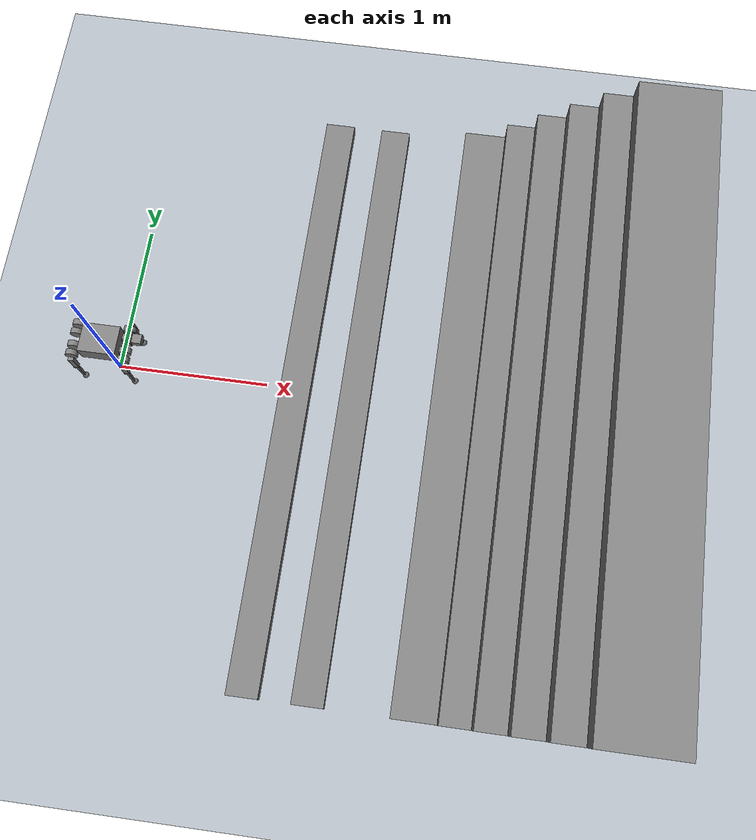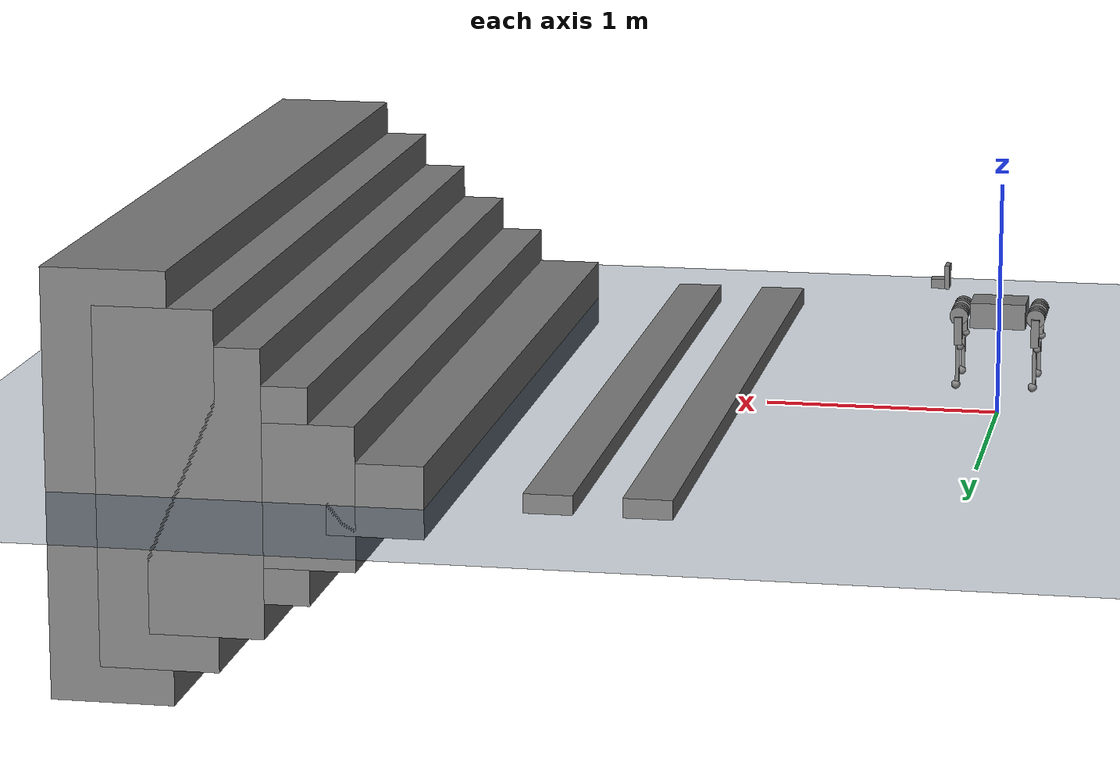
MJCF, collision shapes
<mujoco model="cyberdog scene">
  <include file="robot.xml"/>

  <statistic center="0 0 0.1" extent="0.8"/>

  <visual>
    <headlight diffuse="0.6 0.6 0.6" ambient="0.3 0.3 0.3" specular="0 0 0"/>
    <rgba haze="0.15 0.25 0.35 1"/>
    <global azimuth="-130" elevation="-20"/>
  </visual>

  <asset>
    <texture type="skybox" builtin="gradient" rgb1="0.3 0.5 0.7" rgb2="0 0 0" width="512" height="3072"/>
    <texture type="2d" name="groundplane" builtin="checker" mark="edge" rgb1="0.2 0.3 0.4" rgb2="0.1 0.2 0.3"
      markrgb="0.8 0.8 0.8" width="300" height="300"/>
    <material name="groundplane" texture="groundplane" texuniform="true" texrepeat="5 5" reflectance="0.2"/>
  </asset>

  <worldbody>
    <light pos="0 0 1.5" dir="0 0 -1" directional="true"/>
    <geom name="floor" size="0 0 0.05" type="plane" material="groundplane"/>

    <geom pos="1.2 0 0.04" type="box"  size="0.1 2 0.04" quat="1.0 0 0 0"/>
    <geom pos="1.6 0 0.04" type="box"  size="0.1 2 0.04" quat="1.0 0 0 0"/>

    <geom pos="2.3 0 0.02" type="box"  size="0.2 2 0.15" quat="1.0 0 0 0"/>
    <geom pos="2.6 0 0.02" type="box"  size="0.22 2 0.3" quat="1.0 0 0 0"/>
    <geom pos="2.8 0 0.02" type="box"  size="0.23 2 0.45" quat="1.0 0 0 0"/>
    <geom pos="3 0 0.02" type="box"  size="0.24 2 0.6" quat="1.0 0 0 0"/>
    <geom pos="3.2 0 0.02" type="box"  size="0.25 2 0.75" quat="1.0 0 0 0"/>
    <geom pos="3.4 0 0.02" type="box"  size="0.26 2 0.9" quat="1.0 0 0 0"/>
  </worldbody>
</mujoco>

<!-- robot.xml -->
<mujoco model="cyber_dog">
  <compiler angle="radian" meshdir="meshes/"/>

  <default>
    <default class="cyberdog">
      <geom friction="0.4" margin="0.001" condim="1"/>
      <joint axis="0 1 0" damping="0.1" armature="0.01" frictionloss="0.2"/>
      <motor ctrlrange="-12.0001 12.0001"/>
      <default class="abduction">
        <joint axis="1 0 0" range="-1.0472 1.0472"/>
      </default>
      <default class="hip">
        <default class="front_hip">
          <joint range="-1.5708 3.4907"/>
        </default>
        <default class="back_hip">
          <joint range="-0.5236 4.5379"/>
        </default>
      </default>
      <default class="knee">
        <joint range="-2.7227 -0.83776"/>
        <motor ctrlrange="-45.43 45.43"/>
      </default>
      <default class="visual">
        <geom type="mesh" contype="0" conaffinity="0" group="2" material="dark"/>
      </default>
      <default class="collision">
        <geom group="3"/>
        <default class="foot">
          <geom size="0.022" pos="-0.002 0 -0.213" priority="1" condim="6"
                friction="0.4 0.02 0.01"/>
        </default>
      </default>
    </default>
  </default>

  <asset>
    <material name="metal" rgba=".5 .5 .5 1" shininess="0.25" specular="0"/>
    <material name="black" rgba=".1 .1 .1 1" shininess="0.25"/>
    <material name="dark" rgba="0.2 0.2 0.2 1" shininess="0.1"/>
    <material name="transparent" rgba="1 1 1 0.01"/>

    <mesh name="body" file="body.stl"/>
    <mesh name="hip" file="hip.stl"/>
    <mesh name="hip_mirror" file="hip_mirror.stl"/>
    <mesh name="abad" file="abad.stl"/>
    <mesh name="knee" file="knee.stl"/>
  </asset>

  <worldbody>
    <body name="base_link" pos="0 0 0.445" childclass="cyberdog">

      <inertial pos="0.0273 -0.000242 0.0143" quat="0 0 0 1"
                mass="4.03"
                diaginertia="0.0185 0.0517 0.0483"/>
      <freejoint/>
      <geom size="0.118 0.095 0.0545" type="box" class="collision"/>

      <geom type="mesh" class="visual" material="black" mesh="body"/>

      <geom size="0.0005 0.0005 0.0005" pos="0.0334 -0.0172765 0.0510469" type="box"/>
      <geom size="0.0005 0.0005 0.0005" pos="0.271994 0.025 0.114912" type="box"/>
      <geom size="0.0005 0.0005 0.0005" pos="0.27576 0 0.125794" type="box"/>
      <geom size="0.0005 0.0005 0.0005" pos="0.290228 0 0.14742" type="box"/>
      <geom size="0.038 0.03 0.02" pos="0.256 0 0.12" type="box" class="collision"/>
      <geom size="0.01 0.04 0.05" pos="0.225 0 0.15" type="box" class="collision"/>
      <site name="imu" pos="0 0 0"/>

      <body name="FL_abad" pos="0.164 0.042 0">
        <inertial pos="-0.00870249 0.0262609 -0.00018743" quat="-0.216425 0.671536 0.22334 0.672547" mass="0.577943"
                  diaginertia="0.000797811 0.000747905 0.000457908"/>
        <joint name="FL_hip_joint" pos="0 0 0" axis="1 0 0" range="-0.680678 0.680678"
               actuatorfrcrange="-12.0001 12.0001" damping="0.01" frictionloss="0.1"/>
        <geom size="0.039 0.0175" quat="0.707107 0.707107 0 0" type="cylinder" class="collision"/>
        <geom size="0.039 0.0175" pos="0 0.059 0" quat="0.707107 0.707107 0 0" type="cylinder" class="collision"/>
        <geom type="mesh" class="visual" material="dark" mesh="abad"/>
        <body name="FL_hip" pos="0 0.094 0">
          <inertial pos="-0.00171622 -0.0276376 -0.0148955" quat="0.972561 0.187345 0.00546887 0.137833" mass="0.5954"
                    diaginertia="0.00125179 0.00120656 0.000449032"/>
          <joint name="FL_thigh_joint" pos="0 0 0" axis="0 1 0" range="-1.32645 2.79253"
                 actuatorfrcrange="-12.0001 12.0001" damping="0.01" frictionloss="0.1"/>
          <geom size="0.06 0.0125 0.017" pos="0 0 -0.06" quat="0.707107 0 0.707107 0" type="box" class="collision"/>
          <geom type="mesh" class="visual" material="dark" mesh="hip"/>
          <body name="FL_knee" pos="0 0 -0.12">
            <inertial pos="0.00157271 -3.78302e-05 -0.106096" quat="0.708712 -0.0140225 -0.0146892 0.705206"
                      mass="0.144731" diaginertia="0.000843553 0.00083835 1.87502e-05"/>
            <joint name="FL_calf_joint" pos="0 0 0" axis="0 1 0" range="-2.53073 -0.523599"
                   actuatorfrcrange="-12.0001 12.0001" damping="0.01" frictionloss="0.1"/>
            <geom class="visual" material="metal" type="mesh" mesh="knee"/>
            <geom size="0.008 0.008 0.091705" pos="0 0 -0.091705" quat="0 0 1 0" type="box" class="collision"/>
            <geom name="FL_knee_rubber" size="0.016" pos="-0.01 0 -0.007" quat="0 0 1 0" class="collision"/>
            <geom size="0.019" pos="0.0055 0 -0.17391" class="collision"/>
            <site name="FL_touch" pos="0.0055 0 -0.17391" size="0.02" material="transparent"/>
          </body>
        </body>
      </body>
      <body name="FR_abad" pos="0.164 -0.042 0">
        <inertial pos="-0.00870249 -0.0262609 -0.00018743" quat="0.216425 0.671536 -0.22334 0.672547" mass="0.577943"
                  diaginertia="0.000797811 0.000747905 0.000457908"/>
        <joint name="FR_hip_joint" pos="0 0 0" axis="1 0 0" range="-0.680678 0.680678"
               actuatorfrcrange="-12.0001 12.0001" damping="0.01" frictionloss="0.1"/>
        <geom size="0.039 0.0175" quat="0.707107 0.707107 0 0" type="cylinder" class="collision"/>
        <geom size="0.039 0.0175" pos="0 -0.059 0" quat="0.707107 0.707107 0 0" type="cylinder" class="collision"/>
        <geom quat="0 1 0 0" type="mesh" class="visual" material="dark" mesh="abad"/>
        <body name="FR_hip" pos="0 -0.094 0">
          <inertial pos="-0.00171622 0.0276376 -0.0148955" quat="0.972561 -0.187345 0.00546887 -0.137833" mass="0.5954"
                    diaginertia="0.00125179 0.00120656 0.000449032"/>
          <joint name="FR_thigh_joint" pos="0 0 0" axis="0 1 0" range="-1.32645 2.79253"
                 actuatorfrcrange="-12.0001 12.0001" damping="0.01" frictionloss="0.1"/>
          <geom size="0.06 0.0125 0.017" pos="0 0 -0.06" quat="0.707107 0 0.707107 0" type="box" class="collision"/>
          <geom type="mesh" class="visual" material="dark" mesh="hip_mirror"/>
          <body name="FR_knee" pos="0 0 -0.12">
            <inertial pos="0.00157271 -3.78302e-05 -0.106096" quat="0.708712 -0.0140225 -0.0146892 0.705206"
                      mass="0.144731" diaginertia="0.000843553 0.00083835 1.87502e-05"/>
            <joint name="FR_calf_joint" pos="0 0 0" axis="0 1 0" range="-2.53073 -0.523599"
                   actuatorfrcrange="-12.0001 12.0001" damping="0.01" frictionloss="0.1"/>
            <geom class="visual" material="metal" type="mesh" mesh="knee"/>
            <geom size="0.008 0.008 0.091705" pos="0 0 -0.091705" quat="0 0 1 0" type="box" class="collision"/>
            <geom name="FR_knee_rubber" size="0.016" pos="-0.01 0 -0.007" quat="0 0 1 0" class="collision"/>
            <geom size="0.019" pos="0.0055 0 -0.17391" class="collision"/>
            <site name="FR_touch" pos="0.0055 0 -0.17391" size="0.019" material="transparent"/>
          </body>
        </body>
      </body>
      <body name="RL_abad" pos="-0.164 0.042 0">
        <inertial pos="0.00870249 0.0262609 -0.00018743" quat="0.22334 0.672547 -0.216425 0.671536" mass="0.577943"
                  diaginertia="0.000797811 0.000747905 0.000457908"/>
        <joint name="RL_hip_joint" pos="0 0 0" axis="1 0 0" range="-0.680678 0.680678"
               actuatorfrcrange="-12.0001 12.0001" damping="0.01" frictionloss="0.1"/>
        <geom size="0.039 0.0175" quat="0.707107 0.707107 0 0" type="cylinder" class="collision"/>
        <geom size="0.039 0.0175" pos="0 0.059 0" quat="0.707107 0.707107 0 0" type="cylinder" class="collision"/>
        <geom quat="0 0 1 0" type="mesh" class="visual" material="dark" mesh="abad"/>
        <body name="RL_hip" pos="0 0.094 0">
          <inertial pos="-0.00171622 -0.0276376 -0.0148955" quat="0.972561 0.187345 0.00546887 0.137833" mass="0.5954"
                    diaginertia="0.00125179 0.00120656 0.000449032"/>
          <joint name="RL_thigh_joint" pos="0 0 0" axis="0 1 0" range="-0.977384 3.14159"
                 actuatorfrcrange="-12.0001 12.0001" damping="0.01" frictionloss="0.1"/>
          <geom size="0.06 0.0125 0.017" pos="0 0 -0.06" quat="0.707107 0 0.707107 0" type="box" class="collision"/>
          <geom type="mesh" class="visual" material="dark" mesh="hip"/>
          <body name="RL_knee" pos="0 0 -0.12">
            <inertial pos="0.00157271 -3.78302e-05 -0.106096" quat="0.708712 -0.0140225 -0.0146892 0.705206"
                      mass="0.144731" diaginertia="0.000843553 0.00083835 1.87502e-05"/>
            <joint name="RL_calf_joint" pos="0 0 0" axis="0 1 0" range="-2.53073 -0.523599"
                   actuatorfrcrange="-12.0001 12.0001" damping="0.01" frictionloss="0.1"/>
            <geom class="visual" material="metal" type="mesh" mesh="knee"/>
            <geom size="0.008 0.008 0.091705" pos="0 0 -0.091705" quat="0 0 1 0" type="box" class="collision"/>
            <geom name="RL_knee_rubber" size="0.016" pos="-0.01 0 -0.007" quat="0 0 1 0" class="collision"/>
            <geom size="0.019" pos="0.0055 0 -0.17391" class="collision"/>
            <site name="RL_touch" pos="0.0055 0 -0.17391" size="0.02" material="transparent"/>
          </body>
        </body>
      </body>
      <body name="RR_abad" pos="-0.164 -0.042 0">
        <inertial pos="0.00870249 -0.0262609 -0.00018743" quat="-0.22334 0.672547 0.216425 0.671536" mass="0.577943"
                  diaginertia="0.000797811 0.000747905 0.000457908"/>
        <joint name="RR_hip_joint" pos="0 0 0" axis="1 0 0" range="-0.680678 0.680678"
               actuatorfrcrange="-12.0001 12.0001" damping="0.01" frictionloss="0.1"/>
        <geom size="0.039 0.0175" quat="0.707107 0.707107 0 0" type="cylinder" class="collision"/>
        <geom size="0.039 0.0175" pos="0 -0.059 0" quat="0.707107 0.707107 0 0" type="cylinder" class="collision"/>
        <geom quat="0 0 0 1" type="mesh" class="visual" material="dark" mesh="abad"/>
        <body name="RR_hip" pos="0 -0.094 0">
          <inertial pos="-0.00171622 0.0276376 -0.0148955" quat="0.972561 -0.187345 0.00546887 -0.137833" mass="0.5954"
                    diaginertia="0.00125179 0.00120656 0.000449032"/>
          <joint name="RR_thigh_joint" pos="0 0 0" axis="0 1 0" range="-0.977384 3.14159"
                 actuatorfrcrange="-12.0001 12.0001" damping="0.01" frictionloss="0.1"/>
          <geom size="0.06 0.0125 0.017" pos="0 0 -0.06" quat="0.707107 0 0.707107 0" type="box" class="collision"/>
          <geom type="mesh" class="visual" material="dark" mesh="hip_mirror"/>
          <body name="RR_knee" pos="0 0 -0.12">
            <inertial pos="0.00157271 -3.78302e-05 -0.106096" quat="0.708712 -0.0140225 -0.0146892 0.705206"
                      mass="0.144731" diaginertia="0.000843553 0.00083835 1.87502e-05"/>
            <joint name="RR_calf_joint" pos="0 0 0" axis="0 1 0" range="-2.53073 -0.523599"
                   actuatorfrcrange="-12.0001 12.0001" damping="0.01" frictionloss="0.1"/>
            <geom class="visual" material="metal" type="mesh" mesh="knee"/>
            <geom size="0.008 0.008 0.091705" pos="0 0 -0.091705" quat="0 0 1 0" type="box" class="collision"/>
            <geom name="RR_knee_rubber" size="0.016" pos="-0.01 0 -0.007" quat="0 0 1 0" class="collision"/>
            <geom size="0.019" pos="0.0055 0 -0.17391" class="collision"/>
            <site name="RR_touch" pos="0.0055 0 -0.17391" size="0.02" material="transparent"/>
          </body>
        </body>
      </body>
    </body>
  </worldbody>

  <actuator>
    <motor class="abduction" name="FR_hip" joint="FR_hip_joint"/>
    <motor class="hip" name="FR_thigh" joint="FR_thigh_joint"/>
    <motor class="knee" name="FR_calf" joint="FR_calf_joint"/>
    <motor class="abduction" name="FL_hip" joint="FL_hip_joint"/>
    <motor class="hip" name="FL_thigh" joint="FL_thigh_joint"/>
    <motor class="knee" name="FL_calf" joint="FL_calf_joint"/>
    <motor class="abduction" name="RR_hip" joint="RR_hip_joint"/>
    <motor class="hip" name="RR_thigh" joint="RR_thigh_joint"/>
    <motor class="knee" name="RR_calf" joint="RR_calf_joint"/>
    <motor class="abduction" name="RL_hip" joint="RL_hip_joint"/>
    <motor class="hip" name="RL_thigh" joint="RL_thigh_joint"/>
    <motor class="knee" name="RL_calf" joint="RL_calf_joint"/>
  </actuator>

  <sensor>
    <jointpos name="FR_hip_pos" joint="FR_hip_joint"/>
    <jointpos name="FR_thigh_pos" joint="FR_thigh_joint"/>
    <jointpos name="FR_calf_pos" joint="FR_calf_joint"/>
    <jointpos name="FL_hip_pos" joint="FL_hip_joint"/>
    <jointpos name="FL_thigh_pos" joint="FL_thigh_joint"/>
    <jointpos name="FL_calf_pos" joint="FL_calf_joint"/>
    <jointpos name="RR_hip_pos" joint="RR_hip_joint"/>
    <jointpos name="RR_thigh_pos" joint="RR_thigh_joint"/>
    <jointpos name="RR_calf_pos" joint="RR_calf_joint"/>
    <jointpos name="RL_hip_pos" joint="RL_hip_joint"/>
    <jointpos name="RL_thigh_pos" joint="RL_thigh_joint"/>
    <jointpos name="RL_calf_pos" joint="RL_calf_joint"/>

    <jointvel name="FR_hip_vel" joint="FR_hip_joint"/>
    <jointvel name="FR_thigh_vel" joint="FR_thigh_joint"/>
    <jointvel name="FR_calf_vel" joint="FR_calf_joint"/>
    <jointvel name="FL_hip_vel" joint="FL_hip_joint"/>
    <jointvel name="FL_thigh_vel" joint="FL_thigh_joint"/>
    <jointvel name="FL_calf_vel" joint="FL_calf_joint"/>
    <jointvel name="RR_hip_vel" joint="RR_hip_joint"/>
    <jointvel name="RR_thigh_vel" joint="RR_thigh_joint"/>
    <jointvel name="RR_calf_vel" joint="RR_calf_joint"/>
    <jointvel name="RL_hip_vel" joint="RL_hip_joint"/>
    <jointvel name="RL_thigh_vel" joint="RL_thigh_joint"/>
    <jointvel name="RL_calf_vel" joint="RL_calf_joint"/>

    <jointactuatorfrc name="FR_hip_torque" joint="FR_hip_joint" noise="0.01"/>
    <jointactuatorfrc name="FR_thigh_torque" joint="FR_thigh_joint" noise="0.01"/>
    <jointactuatorfrc name="FR_calf_torque" joint="FR_calf_joint" noise="0.01"/>
    <jointactuatorfrc name="FL_hip_torque" joint="FL_hip_joint" noise="0.01"/>
    <jointactuatorfrc name="FL_thigh_torque" joint="FL_thigh_joint" noise="0.01"/>
    <jointactuatorfrc name="FL_calf_torque" joint="FL_calf_joint" noise="0.01"/>
    <jointactuatorfrc name="RR_hip_torque" joint="RR_hip_joint" noise="0.01"/>
    <jointactuatorfrc name="RR_thigh_torque" joint="RR_thigh_joint" noise="0.01"/>
    <jointactuatorfrc name="RR_calf_torque" joint="RR_calf_joint" noise="0.01"/>
    <jointactuatorfrc name="RL_hip_torque" joint="RL_hip_joint" noise="0.01"/>
    <jointactuatorfrc name="RL_thigh_torque" joint="RL_thigh_joint" noise="0.01"/>
    <jointactuatorfrc name="RL_calf_torque" joint="RL_calf_joint" noise="0.01"/>

    <framequat name="imu_quat" objtype="site" objname="imu"/>
    <gyro name="imu_gyro" site="imu"/>
    <accelerometer name="imu_acc" site="imu"/>

    <framepos name="frame_pos" objtype="site" objname="imu"/>
    <framelinvel name="frame_vel" objtype="site" objname="imu"/>

    <touch name="FR_touch" site="FR_touch"/>
    <touch name="FL_touch" site="FL_touch"/>
    <touch name="RR_touch" site="RR_touch"/>
    <touch name="RL_touch" site="RL_touch"/>
  </sensor>

  <keyframe>
    <key name="home" qpos="0 0 0.1 1 0 0 0 0.5 1.2 -2.7 -0.5 1.2 -2.7 0.5 1.2 -2.7 -0.5 1.2 -2.7"
         ctrl="0 0 0 0 0 0 0 0 0 0 0 0"/>
  </keyframe>
</mujoco>
